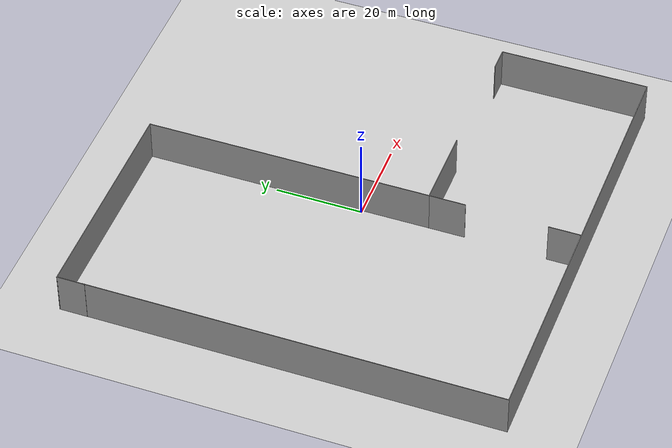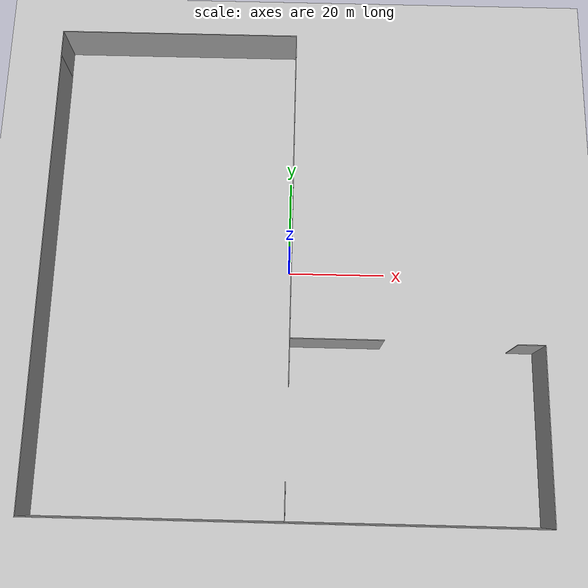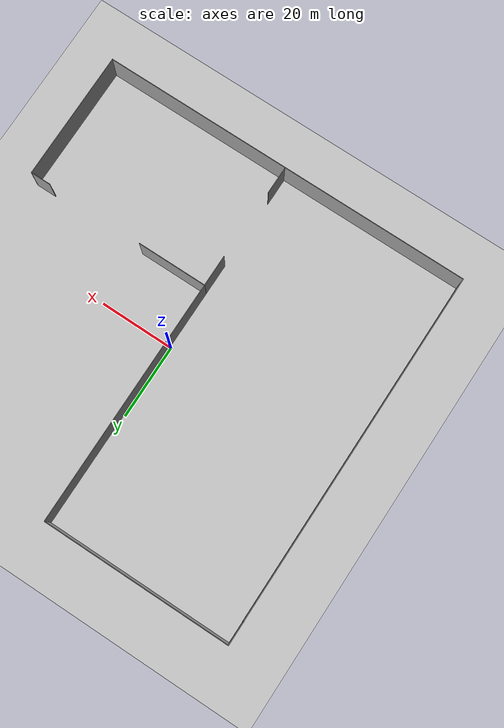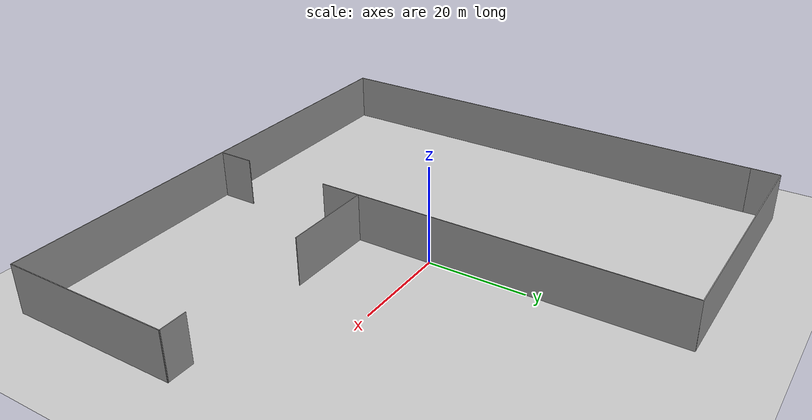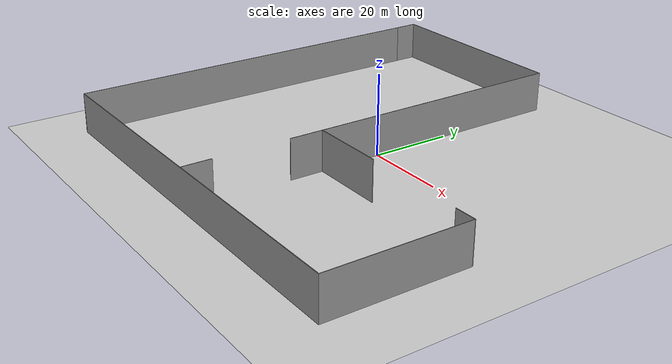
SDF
<sdf version="1.7">
 <world name="warehouse_3">
  <light name="sun" type="directional">
   <pose>0 0 10 0 -0 0</pose>
   <diffuse>0.8 0.8 0.8 1</diffuse>
   <specular>0.2 0.2 0.2 1</specular>
   <attenuation>
    <range>1000</range>
    <constant>0.9</constant>
    <linear>0.01</linear>
    <quadratic>0.001</quadratic>
   </attenuation>
   <direction>-0.5 0.1 -0.9</direction>
   <spot><inner_angle>0</inner_angle><outer_angle>0</outer_angle><falloff>0</falloff></spot>
  </light>
  <model name="ground_plane">
   <static>1</static>
   <link name="link">
    <collision name="collision">
     <geometry><plane><normal>0 0 1</normal><size>100 100</size></plane></geometry>
     <surface><friction><ode><mu>100</mu><mu2>50</mu2></ode></friction></surface>
    </collision>
    <visual name="visual">
     <cast_shadows>0</cast_shadows>
     <geometry><plane><normal>0 0 1</normal><size>100 100</size></plane></geometry>
     <material>
      <script><uri>file://media/materials/scripts/gazebo.material</uri><name>Gazebo/Grey</name></script>
     </material>
    </visual>
   </link>
  </model>
  <gravity>0 0 -9.8</gravity>
  <magnetic_field>6e-06 2.3e-05 -4.2e-05</magnetic_field>
  <atmosphere type="adiabatic"/>
  <physics type="ode">
   <max_step_size>0.001</max_step_size>
   <real_time_factor>1</real_time_factor>
   <real_time_update_rate>1000</real_time_update_rate>
  </physics>
  <scene><ambient>0.4 0.4 0.4 1</ambient><background>0.7 0.7 0.7 1</background><shadows>1</shadows></scene>
  <spherical_coordinates>
   <surface_model>EARTH_WGS84</surface_model>
   <latitude_deg>0</latitude_deg>
   <longitude_deg>0</longitude_deg>
   <elevation>0</elevation>
   <heading_deg>0</heading_deg>
  </spherical_coordinates>
  <model name="env_6">
   <pose>0 0 4 0 -0 0</pose>
   <link name="Wall_14">
    <collision name="Wall_14_Collision">
     <geometry><box><size>6.5 0.15 10</size></box></geometry>
     <pose>0 0 1.25 0 -0 0</pose>
    </collision>
    <visual name="Wall_14_Visual">
     <pose>0 0 1.25 0 -0 0</pose>
     <geometry><box><size>6.5 0.15 10</size></box></geometry>
     <material>
      <script><uri>file://media/materials/scripts/gazebo.material</uri><name>Gazebo/Grey</name></script>
      <ambient>1 1 1 1</ambient>
     </material>
     <meta><layer>0</layer></meta>
    </visual>
    <pose>-50.2346 47.452 0 0 -0 1.5708</pose>
   </link>
   <link name="Wall_15">
    <collision name="Wall_15_Collision">
     <geometry><box><size>50.75 0.15 10</size></box></geometry>
     <pose>0 0 1.25 0 -0 0</pose>
    </collision>
    <visual name="Wall_15_Visual">
     <pose>0 0 1.25 0 -0 0</pose>
     <geometry><box><size>50.75 0.15 10</size></box></geometry>
     <material>
      <script><uri>file://media/materials/scripts/gazebo.material</uri><name>Gazebo/Grey</name></script>
      <ambient>1 1 1 1</ambient>
     </material>
     <meta><layer>0</layer></meta>
    </visual>
    <pose>-24.9346 50.627 0 0 -0 0</pose>
   </link>
   <link name="Wall_16">
    <collision name="Wall_16_Collision">
     <geometry><box><size>66.5 0.15 10</size></box></geometry>
     <pose>0 0 1.25 0 -0 0</pose>
    </collision>
    <visual name="Wall_16_Visual">
     <pose>0 0 1.25 0 -0 0</pose>
     <geometry><box><size>66.5 0.15 10</size></box></geometry>
     <material>
      <script><uri>file://media/materials/scripts/gazebo.material</uri><name>Gazebo/Grey</name></script>
      <ambient>1 1 1 1</ambient>
     </material>
     <meta><layer>0</layer></meta>
    </visual>
    <pose>0.365356 17.452 0 0 -0 -1.5708</pose>
   </link>
   <link name="Wall_17">
    <collision name="Wall_17_Collision">
     <geometry><box><size>18.75 0.15 10</size></box></geometry>
     <pose>0 0 1.25 0 -0 0</pose>
    </collision>
    <visual name="Wall_17_Visual">
     <pose>0 0 1.25 0 -0 0</pose>
     <geometry><box><size>18.75 0.15 10</size></box></geometry>
     <material>
      <script><uri>file://media/materials/scripts/gazebo.material</uri><name>Gazebo/Grey</name></script>
      <ambient>1 1 1 1</ambient>
     </material>
     <meta><layer>0</layer></meta>
    </visual>
    <pose>9.66536 -15.723 0 0 -0 0</pose>
   </link>
   <link name="Wall_19">
    <collision name="Wall_19_Collision">
     <geometry><box><size>8.5 0.15 10</size></box></geometry>
     <pose>0 0 1.25 0 -0 0</pose>
    </collision>
    <visual name="Wall_19_Visual">
     <pose>0 0 1.25 0 -0 0</pose>
     <geometry><box><size>8.5 0.15 10</size></box></geometry>
     <material>
      <script><uri>file://media/materials/scripts/gazebo.material</uri><name>Gazebo/Grey</name></script>
      <ambient>1 1 1 1</ambient>
     </material>
     <meta><layer>0</layer></meta>
    </visual>
    <pose>0.365356 -19.898 0 0 -0 -1.5708</pose>
   </link>
   <link name="Wall_21">
    <collision name="Wall_21_Collision">
     <geometry><box><size>7.25 0.15 10</size></box></geometry>
     <pose>0 0 1.25 0 -0 0</pose>
    </collision>
    <visual name="Wall_21_Visual">
     <pose>0 0 1.25 0 -0 0</pose>
     <geometry><box><size>7.25 0.15 10</size></box></geometry>
     <material>
      <script><uri>file://media/materials/scripts/gazebo.material</uri><name>Gazebo/Grey</name></script>
      <ambient>1 1 1 1</ambient>
     </material>
     <meta><layer>0</layer></meta>
    </visual>
    <pose>0.174291 -46.7716 0 0 -0 1.5708</pose>
   </link>
   <link name="Wall_6">
    <collision name="Wall_6_Collision">
     <geometry><box><size>95.5 0.15 10</size></box></geometry>
     <pose>0 0 1.25 0 -0 0</pose>
    </collision>
    <visual name="Wall_6_Visual">
     <pose>0 0 1.25 0 -0 0</pose>
     <geometry><box><size>95.5 0.15 10</size></box></geometry>
     <material>
      <script><uri>file://media/materials/scripts/gazebo.material</uri><name>Gazebo/Grey</name></script>
      <ambient>1 1 1 1</ambient>
     </material>
     <meta><layer>0</layer></meta>
    </visual>
    <pose>-50.193 -2.952 0 0 -0 -1.5708</pose>
   </link>
   <link name="Wall_7">
    <collision name="Wall_7_Collision">
     <geometry><box><size>101 0.15 10</size></box></geometry>
     <pose>0 0 1.25 0 -0 0</pose>
    </collision>
    <visual name="Wall_7_Visual">
     <pose>0 0 1.25 0 -0 0</pose>
     <geometry><box><size>101 0.15 10</size></box></geometry>
     <material>
      <script><uri>file://media/materials/scripts/gazebo.material</uri><name>Gazebo/Grey</name></script>
      <ambient>1 1 1 1</ambient>
     </material>
     <meta><layer>0</layer></meta>
    </visual>
    <pose>0.23198 -50.627 0 0 -0 0</pose>
   </link>
   <link name="Wall_8">
    <collision name="Wall_8_Collision">
     <geometry><box><size>34.75 0.15 10</size></box></geometry>
     <pose>0 0 1.25 0 -0 0</pose>
    </collision>
    <visual name="Wall_8_Visual">
     <pose>0 0 1.25 0 -0 0</pose>
     <geometry><box><size>34.75 0.15 10</size></box></geometry>
     <material>
      <script><uri>file://media/materials/scripts/gazebo.material</uri><name>Gazebo/Grey</name></script>
      <ambient>1 1 1 1</ambient>
     </material>
     <meta><layer>0</layer></meta>
    </visual>
    <pose>50.657 -33.327 0 0 -0 1.5708</pose>
   </link>
   <link name="Wall_9">
    <collision name="Wall_9_Collision">
     <geometry><box><size>5.5 0.15 10</size></box></geometry>
     <pose>0 0 1.25 0 -0 0</pose>
    </collision>
    <visual name="Wall_9_Visual">
     <pose>0 0 1.25 0 -0 0</pose>
     <geometry><box><size>5.5 0.15 10</size></box></geometry>
     <material>
      <script><uri>file://media/materials/scripts/gazebo.material</uri><name>Gazebo/Grey</name></script>
      <ambient>1 1 1 1</ambient>
     </material>
     <meta><layer>0</layer></meta>
    </visual>
    <pose>47.982 -16.027 0 0 -0 3.14159</pose>
   </link>
   <static>1</static>
  </model>
  <light name="Warehouse_CeilingLight_001" type="point">
   <pose>0 0 9 0 0 0</pose>
   <diffuse>0.5 0.5 0.5 1</diffuse>
   <specular>0.2 0.2 0.2 1</specular>
   <attenuation>
    <range>80</range>
    <constant>0.3</constant>
    <linear>0.01</linear>
    <quadratic>0.001</quadratic>
   </attenuation>
   <direction>0.1 0.1 -1</direction>
  </light>
  <light name="Warehouse_CeilingLight_002" type="point">
   <pose>0 -27.5 9 0 0 0</pose>
   <diffuse>0.5 0.5 0.5 1</diffuse>
   <specular>0.2 0.2 0.2 1</specular>
   <attenuation>
    <range>80</range>
    <constant>0.3</constant>
    <linear>0.01</linear>
    <quadratic>0.001</quadratic>
   </attenuation>
   <direction>0.1 0.1 -1</direction>
  </light>
  <light name="Warehouse_CeilingLight_003" type="point">
   <pose>-27.5 0 9 0 0 0</pose>
   <diffuse>0.5 0.5 0.5 1</diffuse>
   <specular>0.2 0.2 0.2 1</specular>
   <attenuation>
    <range>80</range>
    <constant>0.3</constant>
    <linear>0.01</linear>
    <quadratic>0.001</quadratic>
   </attenuation>
   <direction>0.1 0.1 -1</direction>
  </light>
  <light name="Warehouse_CeilingLight_004" type="point">
   <pose>-27.5 -27.5 9 0 0 0</pose>
   <diffuse>0.5 0.5 0.5 1</diffuse>
   <specular>0.2 0.2 0.2 1</specular>
   <attenuation>
    <range>80</range>
    <constant>0.3</constant>
    <linear>0.01</linear>
    <quadratic>0.001</quadratic>
   </attenuation>
   <direction>0.1 0.1 -1</direction>
  </light>
  <light name="Warehouse_CeilingLight_005" type="point">
   <pose>-27.5 27.5 9 0 0 0</pose>
   <diffuse>0.5 0.5 0.5 1</diffuse>
   <specular>0.2 0.2 0.2 1</specular>
   <attenuation>
    <range>80</range>
    <constant>0.3</constant>
    <linear>0.01</linear>
    <quadratic>0.001</quadratic>
   </attenuation>
   <direction>0.1 0.1 -1</direction>
  </light>
  <light name="Warehouse_CeilingLight_006" type="point">
   <pose>27.5 -27.5 9 0 0 0</pose>
   <diffuse>0.5 0.5 0.5 1</diffuse>
   <specular>0.2 0.2 0.2 1</specular>
   <attenuation>
    <range>80</range>
    <constant>0.3</constant>
    <linear>0.01</linear>
    <quadratic>0.001</quadratic>
   </attenuation>
   <direction>0.1 0.1 -1</direction>
  </light>
 </world>
</sdf>
